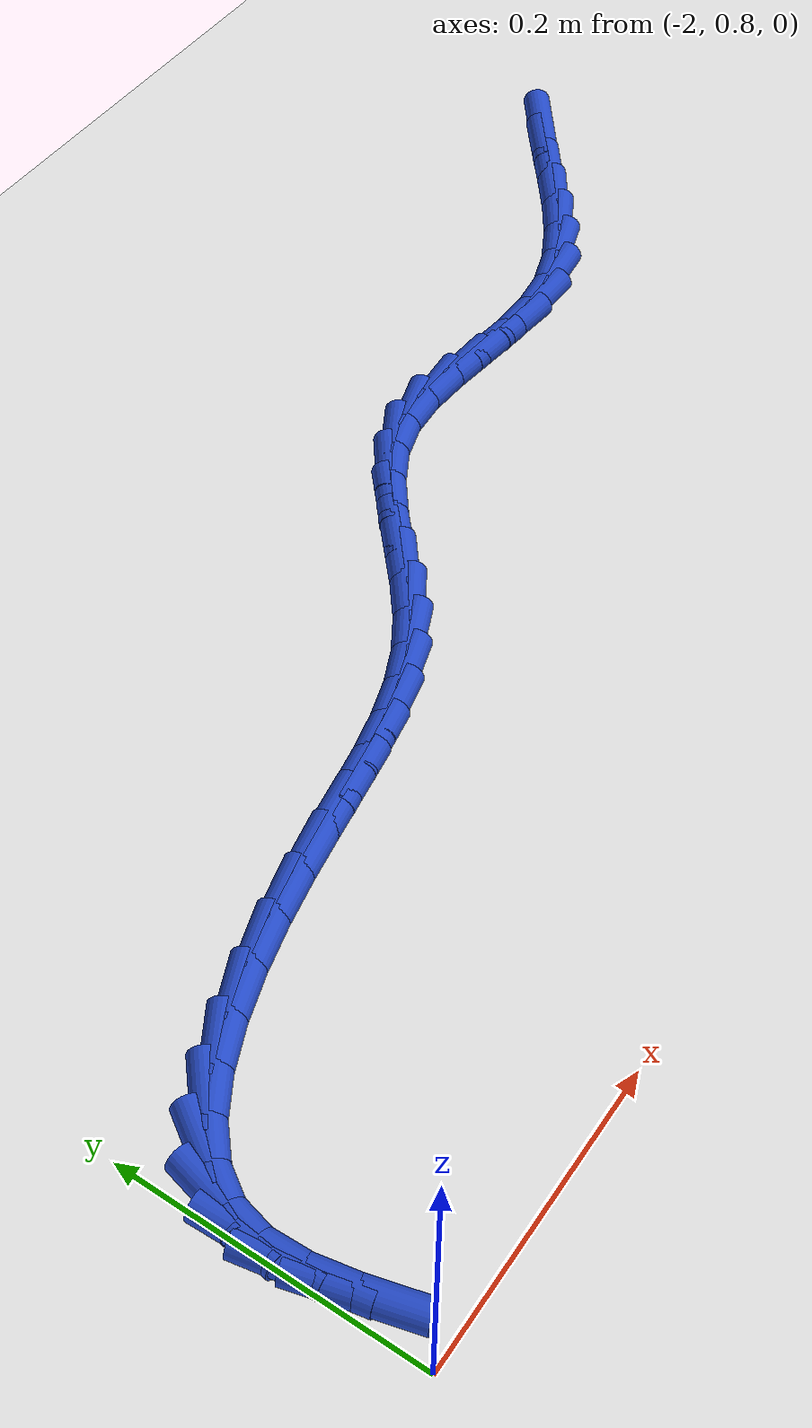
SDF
<sdf version="1.6">
 <world name="default">
  <model name="ground_plane">
   <static>1</static>
   <link name="link">
    <collision name="collision">
     <geometry><plane><normal>0 0 1</normal><size>100 100</size></plane></geometry>
     <surface><friction><ode><mu>100</mu><mu2>50</mu2></ode></friction></surface>
    </collision>
    <visual name="visual">
     <cast_shadows>0</cast_shadows>
     <geometry><plane><normal>0 0 1</normal><size>100 100</size></plane></geometry>
     <material>
      <script><uri>file://media/materials/scripts/gazebo.material</uri><name>Gazebo/WhiteGlow</name></script>
     </material>
    </visual>
   </link>
  </model>
  <model name="line">
   <link name="link_64">
    <pose>-1.133746678114327 1.269941331054357 0.01 0 1.57 0.6511332675026256</pose>
    <collision name="collision">
     <geometry><cylinder><radius>0.01</radius><length>0.08</length></cylinder></geometry>
    </collision>
    <visual name="visual">
     <material>
      <script><name>Gazebo/Blue</name><uri>file://media/materials/scripts/gazebo.material</uri></script>
     </material>
     <geometry><cylinder><radius>0.01</radius><length>0.08</length></cylinder></geometry>
    </visual>
   </link>
   <link name="link_65">
    <pose>-1.157911998771127 1.2515274984015263 0.01 0 1.57 0.6738284440458515</pose>
    <collision name="collision">
     <geometry><cylinder><radius>0.01</radius><length>0.08</length></cylinder></geometry>
    </collision>
    <visual name="visual">
     <material>
      <script><name>Gazebo/Blue</name><uri>file://media/materials/scripts/gazebo.material</uri></script>
     </material>
     <geometry><cylinder><radius>0.01</radius><length>0.08</length></cylinder></geometry>
    </visual>
   </link>
   <link name="link_66">
    <pose>-1.1824367910433156 1.2319443390999525 0.01 0 1.57 0.6553924204629619</pose>
    <collision name="collision">
     <geometry><cylinder><radius>0.01</radius><length>0.08</length></cylinder></geometry>
    </collision>
    <visual name="visual">
     <material>
      <script><name>Gazebo/Blue</name><uri>file://media/materials/scripts/gazebo.material</uri></script>
     </material>
     <geometry><cylinder><radius>0.01</radius><length>0.08</length></cylinder></geometry>
    </visual>
   </link>
   <link name="link_67">
    <pose>-1.2075100855315306 1.212669287482575 0.01 0 1.57 0.5955361580434043</pose>
    <collision name="collision">
     <geometry><cylinder><radius>0.01</radius><length>0.08</length></cylinder></geometry>
    </collision>
    <visual name="visual">
     <material>
      <script><name>Gazebo/Blue</name><uri>file://media/materials/scripts/gazebo.material</uri></script>
     </material>
     <geometry><cylinder><radius>0.01</radius><length>0.08</length></cylinder></geometry>
    </visual>
   </link>
   <link name="link_68">
    <pose>-1.233320912836411 1.1951797778823343 0.01 0 1.57 0.4889840245981175</pose>
    <collision name="collision">
     <geometry><cylinder><radius>0.01</radius><length>0.08</length></cylinder></geometry>
    </collision>
    <visual name="visual">
     <material>
      <script><name>Gazebo/Blue</name><uri>file://media/materials/scripts/gazebo.material</uri></script>
     </material>
     <geometry><cylinder><radius>0.01</radius><length>0.08</length></cylinder></geometry>
    </visual>
   </link>
   <link name="link_69">
    <pose>-1.2600583035585962 1.1809532446321702 0.01 0 1.57 0.32825680319538175</pose>
    <collision name="collision">
     <geometry><cylinder><radius>0.01</radius><length>0.08</length></cylinder></geometry>
    </collision>
    <visual name="visual">
     <material>
      <script><name>Gazebo/Blue</name><uri>file://media/materials/scripts/gazebo.material</uri></script>
     </material>
     <geometry><cylinder><radius>0.01</radius><length>0.08</length></cylinder></geometry>
    </visual>
   </link>
   <link name="link_70">
    <pose>-1.287911288298725 1.1714671220650232 0.01 0 1.57 0.1267702559740721</pose>
    <collision name="collision">
     <geometry><cylinder><radius>0.01</radius><length>0.08</length></cylinder></geometry>
    </collision>
    <visual name="visual">
     <material>
      <script><name>Gazebo/Blue</name><uri>file://media/materials/scripts/gazebo.material</uri></script>
     </material>
     <geometry><cylinder><radius>0.01</radius><length>0.08</length></cylinder></geometry>
    </visual>
   </link>
   <link name="link_71">
    <pose>-1.3169821211343697 1.1677619355363913 0.01 0 1.57 -0.025820820986153712</pose>
    <collision name="collision">
     <geometry><cylinder><radius>0.01</radius><length>0.08</length></cylinder></geometry>
    </collision>
    <visual name="visual">
     <material>
      <script><name>Gazebo/Blue</name><uri>file://media/materials/scripts/gazebo.material</uri></script>
     </material>
     <geometry><cylinder><radius>0.01</radius><length>0.08</length></cylinder></geometry>
    </visual>
   </link>
   <link name="link_72">
    <pose>-1.3469076221600564 1.1685348083108362 0.01 0 1.57 -0.10423260535252885</pose>
    <collision name="collision">
     <geometry><cylinder><radius>0.01</radius><length>0.08</length></cylinder></geometry>
    </collision>
    <visual name="visual">
     <material>
      <script><name>Gazebo/Blue</name><uri>file://media/materials/scripts/gazebo.material</uri></script>
     </material>
     <geometry><cylinder><radius>0.01</radius><length>0.08</length></cylinder></geometry>
    </visual>
   </link>
   <link name="link_73">
    <pose>-1.3771692279955414 1.1717005272251027 0.01 0 1.57 -0.11494705766490212</pose>
    <collision name="collision">
     <geometry><cylinder><radius>0.01</radius><length>0.08</length></cylinder></geometry>
    </collision>
    <visual name="visual">
     <material>
      <script><name>Gazebo/Blue</name><uri>file://media/materials/scripts/gazebo.material</uri></script>
     </material>
     <geometry><cylinder><radius>0.01</radius><length>0.08</length></cylinder></geometry>
    </visual>
   </link>
   <link name="link_74">
    <pose>-1.4072482667766135 1.175173332912703 0.01 0 1.57 -0.05760332277768887</pose>
    <collision name="collision">
     <geometry><cylinder><radius>0.01</radius><length>0.08</length></cylinder></geometry>
    </collision>
    <visual name="visual">
     <material>
      <script><name>Gazebo/Blue</name><uri>file://media/materials/scripts/gazebo.material</uri></script>
     </material>
     <geometry><cylinder><radius>0.01</radius><length>0.08</length></cylinder></geometry>
    </visual>
   </link>
   <link name="link_75">
    <pose>-1.4366260666390642 1.17686746600715 0.01 0 1.57 0.07692396267546257</pose>
    <collision name="collision">
     <geometry><cylinder><radius>0.01</radius><length>0.08</length></cylinder></geometry>
    </collision>
    <visual name="visual">
     <material>
      <script><name>Gazebo/Blue</name><uri>file://media/materials/scripts/gazebo.material</uri></script>
     </material>
     <geometry><cylinder><radius>0.01</radius><length>0.08</length></cylinder></geometry>
    </visual>
   </link>
   <link name="link_76">
    <pose>-1.4647839557186852 1.1746971671419573 0.01 0 1.57 0.29432649963960544</pose>
    <collision name="collision">
     <geometry><cylinder><radius>0.01</radius><length>0.08</length></cylinder></geometry>
    </collision>
    <visual name="visual">
     <material>
      <script><name>Gazebo/Blue</name><uri>file://media/materials/scripts/gazebo.material</uri></script>
     </material>
     <geometry><cylinder><radius>0.01</radius><length>0.08</length></cylinder></geometry>
    </visual>
   </link>
   <link name="link_77">
    <pose>-1.4912306659691819 1.1666803578148779 0.01 0 1.57 0.5094636689062111</pose>
    <collision name="collision">
     <geometry><cylinder><radius>0.01</radius><length>0.08</length></cylinder></geometry>
    </collision>
    <visual name="visual">
     <material>
      <script><name>Gazebo/Blue</name><uri>file://media/materials/scripts/gazebo.material</uri></script>
     </material>
     <geometry><cylinder><radius>0.01</radius><length>0.08</length></cylinder></geometry>
    </visual>
   </link>
   <link name="link_78">
    <pose>-1.516004908869556 1.152840108418702 0.01 0 1.57 0.6465020942214097</pose>
    <collision name="collision">
     <geometry><cylinder><radius>0.01</radius><length>0.08</length></cylinder></geometry>
    </collision>
    <visual name="visual">
     <material>
      <script><name>Gazebo/Blue</name><uri>file://media/materials/scripts/gazebo.material</uri></script>
     </material>
     <geometry><cylinder><radius>0.01</radius><length>0.08</length></cylinder></geometry>
    </visual>
   </link>
   <link name="link_79">
    <pose>-1.539624997532165 1.135014036209416 0.01 0 1.57 0.7134489259296912</pose>
    <collision name="collision">
     <geometry><cylinder><radius>0.01</radius><length>0.08</length></cylinder></geometry>
    </collision>
    <visual name="visual">
     <material>
      <script><name>Gazebo/Blue</name><uri>file://media/materials/scripts/gazebo.material</uri></script>
     </material>
     <geometry><cylinder><radius>0.01</radius><length>0.08</length></cylinder></geometry>
    </visual>
   </link>
   <link name="link_80">
    <pose>-1.5626265417876786 1.1151051996420644 0.01 0 1.57 0.7196883293391451</pose>
    <collision name="collision">
     <geometry><cylinder><radius>0.01</radius><length>0.08</length></cylinder></geometry>
    </collision>
    <visual name="visual">
     <material>
      <script><name>Gazebo/Blue</name><uri>file://media/materials/scripts/gazebo.material</uri></script>
     </material>
     <geometry><cylinder><radius>0.01</radius><length>0.08</length></cylinder></geometry>
    </visual>
   </link>
   <link name="link_81">
    <pose>-1.585545151466768 1.0950166571716924 0.01 0 1.57 0.6660231371852813</pose>
    <collision name="collision">
     <geometry><cylinder><radius>0.01</radius><length>0.08</length></cylinder></geometry>
    </collision>
    <visual name="visual">
     <material>
      <script><name>Gazebo/Blue</name><uri>file://media/materials/scripts/gazebo.material</uri></script>
     </material>
     <geometry><cylinder><radius>0.01</radius><length>0.08</length></cylinder></geometry>
    </visual>
   </link>
   <link name="link_82">
    <pose>-1.6089164364001038 1.0766514672533454 0.01 0 1.57 0.5483018822474628</pose>
    <collision name="collision">
     <geometry><cylinder><radius>0.01</radius><length>0.08</length></cylinder></geometry>
    </collision>
    <visual name="visual">
     <material>
      <script><name>Gazebo/Blue</name><uri>file://media/materials/scripts/gazebo.material</uri></script>
     </material>
     <geometry><cylinder><radius>0.01</radius><length>0.08</length></cylinder></geometry>
    </visual>
   </link>
   <link name="link_83">
    <pose>-1.6332516346753838 1.061788228897925 0.01 0 1.57 0.41151461029955594</pose>
    <collision name="collision">
     <geometry><cylinder><radius>0.01</radius><length>0.08</length></cylinder></geometry>
    </collision>
    <visual name="visual">
     <material>
      <script><name>Gazebo/Blue</name><uri>file://media/materials/scripts/gazebo.material</uri></script>
     </material>
     <geometry><cylinder><radius>0.01</radius><length>0.08</length></cylinder></geometry>
    </visual>
   </link>
   <link name="link_84">
    <pose>-1.6587585818979647 1.0506561523693314 0.01 0 1.57 0.2989364905773698</pose>
    <collision name="collision">
     <geometry><cylinder><radius>0.01</radius><length>0.08</length></cylinder></geometry>
    </collision>
    <visual name="visual">
     <material>
      <script><name>Gazebo/Blue</name><uri>file://media/materials/scripts/gazebo.material</uri></script>
     </material>
     <geometry><cylinder><radius>0.01</radius><length>0.08</length></cylinder></geometry>
    </visual>
   </link>
   <link name="link_85">
    <pose>-1.685439392754361 1.0424338906841641 0.01 0 1.57 0.21744418042953836</pose>
    <collision name="collision">
     <geometry><cylinder><radius>0.01</radius><length>0.08</length></cylinder></geometry>
    </collision>
    <visual name="visual">
     <material>
      <script><name>Gazebo/Blue</name><uri>file://media/materials/scripts/gazebo.material</uri></script>
     </material>
     <geometry><cylinder><radius>0.01</radius><length>0.08</length></cylinder></geometry>
    </visual>
   </link>
   <link name="link_86">
    <pose>-1.7132922757760531 1.0362801492547473 0.01 0 1.57 0.16814160042398438</pose>
    <collision name="collision">
     <geometry><cylinder><radius>0.01</radius><length>0.08</length></cylinder></geometry>
    </collision>
    <visual name="visual">
     <material>
      <script><name>Gazebo/Blue</name><uri>file://media/materials/scripts/gazebo.material</uri></script>
     </material>
     <geometry><cylinder><radius>0.01</radius><length>0.08</length></cylinder></geometry>
    </visual>
   </link>
   <link name="link_87">
    <pose>-1.7423154394945237 1.0313536334934057 0.01 0 1.57 0.1492733518069973</pose>
    <collision name="collision">
     <geometry><cylinder><radius>0.01</radius><length>0.08</length></cylinder></geometry>
    </collision>
    <visual name="visual">
     <material>
      <script><name>Gazebo/Blue</name><uri>file://media/materials/scripts/gazebo.material</uri></script>
     </material>
     <geometry><cylinder><radius>0.01</radius><length>0.08</length></cylinder></geometry>
    </visual>
   </link>
   <link name="link_88">
    <pose>-1.7725070924412518 1.0268130488124634 0.01 0 1.57 0.15799016735512955</pose>
    <collision name="collision">
     <geometry><cylinder><radius>0.01</radius><length>0.08</length></cylinder></geometry>
    </collision>
    <visual name="visual">
     <material>
      <script><name>Gazebo/Blue</name><uri>file://media/materials/scripts/gazebo.material</uri></script>
     </material>
     <geometry><cylinder><radius>0.01</radius><length>0.08</length></cylinder></geometry>
    </visual>
   </link>
   <link name="link_89">
    <pose>-1.803865443147719 1.0218171006242451 0.01 0 1.57 0.19099215695665706</pose>
    <collision name="collision">
     <geometry><cylinder><radius>0.01</radius><length>0.08</length></cylinder></geometry>
    </collision>
    <visual name="visual">
     <material>
      <script><name>Gazebo/Blue</name><uri>file://media/materials/scripts/gazebo.material</uri></script>
     </material>
     <geometry><cylinder><radius>0.01</radius><length>0.08</length></cylinder></geometry>
    </visual>
   </link>
   <link name="link_90">
    <pose>-1.8363702822251415 1.0155323261328923 0.01 0 1.57 0.2417975511370619</pose>
    <collision name="collision">
     <geometry><cylinder><radius>0.01</radius><length>0.08</length></cylinder></geometry>
    </collision>
    <visual name="visual">
     <material>
      <script><name>Gazebo/Blue</name><uri>file://media/materials/scripts/gazebo.material</uri></script>
     </material>
     <geometry><cylinder><radius>0.01</radius><length>0.08</length></cylinder></geometry>
    </visual>
   </link>
   <link name="link_91">
    <pose>-1.8693694714373585 1.007393975573358 0.01 0 1.57 0.30873638254339725</pose>
    <collision name="collision">
     <geometry><cylinder><radius>0.01</radius><length>0.08</length></cylinder></geometry>
    </collision>
    <visual name="visual">
     <material>
      <script><name>Gazebo/Blue</name><uri>file://media/materials/scripts/gazebo.material</uri></script>
     </material>
     <geometry><cylinder><radius>0.01</radius><length>0.08</length></cylinder></geometry>
    </visual>
   </link>
   <link name="link_92">
    <pose>-1.9014355456884233 0.99716698887783 0.01 0 1.57 0.3997507101552302</pose>
    <collision name="collision">
     <geometry><cylinder><radius>0.01</radius><length>0.08</length></cylinder></geometry>
    </collision>
    <visual name="visual">
     <material>
      <script><name>Gazebo/Blue</name><uri>file://media/materials/scripts/gazebo.material</uri></script>
     </material>
     <geometry><cylinder><radius>0.01</radius><length>0.08</length></cylinder></geometry>
    </visual>
   </link>
   <link name="link_93">
    <pose>-1.931093565825511 0.9846364932159679 0.01 0 1.57 0.5284635581197322</pose>
    <collision name="collision">
     <geometry><cylinder><radius>0.01</radius><length>0.08</length></cylinder></geometry>
    </collision>
    <visual name="visual">
     <material>
      <script><name>Gazebo/Blue</name><uri>file://media/materials/scripts/gazebo.material</uri></script>
     </material>
     <geometry><cylinder><radius>0.01</radius><length>0.08</length></cylinder></geometry>
    </visual>
   </link>
   <link name="link_94">
    <pose>-1.9568685926957967 0.9695876157574327 0.01 0 1.57 0.7165277883315211</pose>
    <collision name="collision">
     <geometry><cylinder><radius>0.01</radius><length>0.08</length></cylinder></geometry>
    </collision>
    <visual name="visual">
     <material>
      <script><name>Gazebo/Blue</name><uri>file://media/materials/scripts/gazebo.material</uri></script>
     </material>
     <geometry><cylinder><radius>0.01</radius><length>0.08</length></cylinder></geometry>
    </visual>
   </link>
   <link name="link_95">
    <pose>-1.9772856871464568 0.9518054836718839 0.01 0 1.57 0.9907149608257934</pose>
    <collision name="collision">
     <geometry><cylinder><radius>0.01</radius><length>0.08</length></cylinder></geometry>
    </collision>
    <visual name="visual">
     <material>
      <script><name>Gazebo/Blue</name><uri>file://media/materials/scripts/gazebo.material</uri></script>
     </material>
     <geometry><cylinder><radius>0.01</radius><length>0.08</length></cylinder></geometry>
    </visual>
   </link>
   <link name="link_96">
    <pose>-1.9908699100246665 0.9310752241289828 0.01 0 1.57 1.3371681201641363</pose>
    <collision name="collision">
     <geometry><cylinder><radius>0.01</radius><length>0.08</length></cylinder></geometry>
    </collision>
    <visual name="visual">
     <material>
      <script><name>Gazebo/Blue</name><uri>file://media/materials/scripts/gazebo.material</uri></script>
     </material>
     <geometry><cylinder><radius>0.01</radius><length>0.08</length></cylinder></geometry>
    </visual>
   </link>
   <link name="link_97">
    <pose>-1.996534819148683 0.9072704593637391 0.01 0 1.57 -1.5319652508966426</pose>
    <collision name="collision">
     <geometry><cylinder><radius>0.01</radius><length>0.08</length></cylinder></geometry>
    </collision>
    <visual name="visual">
     <material>
      <script><name>Gazebo/Blue</name><uri>file://media/materials/scripts/gazebo.material</uri></script>
     </material>
     <geometry><cylinder><radius>0.01</radius><length>0.08</length></cylinder></geometry>
    </visual>
   </link>
   <link name="link_98">
    <pose>-1.9955060950218992 0.8807914861114736 0.01 0 1.57 -1.3756573393630993</pose>
    <collision name="collision">
     <geometry><cylinder><radius>0.01</radius><length>0.08</length></cylinder></geometry>
    </collision>
    <visual name="visual">
     <material>
      <script><name>Gazebo/Blue</name><uri>file://media/materials/scripts/gazebo.material</uri></script>
     </material>
     <geometry><cylinder><radius>0.01</radius><length>0.08</length></cylinder></geometry>
    </visual>
   </link>
   <link name="link_99">
    <pose>-1.9898613214975607 0.8522326547249836 0.01 0 1.57 -1.3049137431508546</pose>
    <collision name="collision">
     <geometry><cylinder><radius>0.01</radius><length>0.08</length></cylinder></geometry>
    </collision>
    <visual name="visual">
     <material>
      <script><name>Gazebo/Blue</name><uri>file://media/materials/scripts/gazebo.material</uri></script>
     </material>
     <geometry><cylinder><radius>0.01</radius><length>0.08</length></cylinder></geometry>
    </visual>
   </link>
  </model>
 </world>
</sdf>
